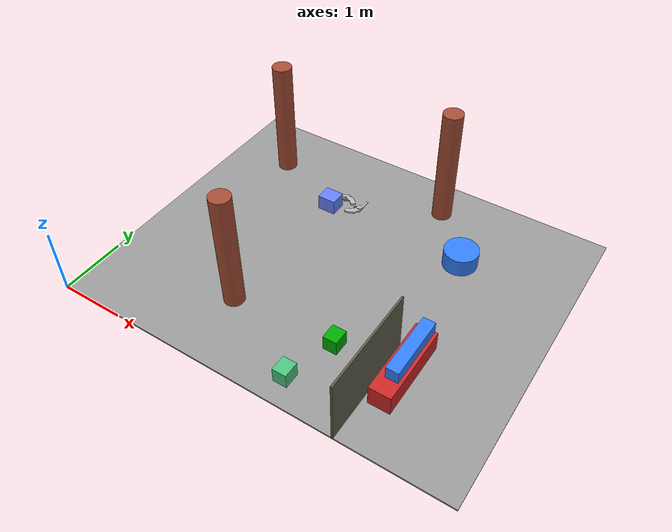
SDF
<sdf version="1.7">
 <world name="default">
  <light name="sun" type="directional">
   <pose>0 0 10 0 -0 0</pose>
   <diffuse>0.8 0.8 0.8 1</diffuse>
   <specular>0.2 0.2 0.2 1</specular>
   <attenuation>
    <range>1000</range>
    <constant>0.9</constant>
    <linear>0.01</linear>
    <quadratic>0.001</quadratic>
   </attenuation>
   <direction>-0.5 0.1 -0.9</direction>
   <spot><inner_angle>0</inner_angle><outer_angle>0</outer_angle><falloff>0</falloff></spot>
  </light>
  <gravity>0 0 -9.8</gravity>
  <magnetic_field>6e-06 2.3e-05 -4.2e-05</magnetic_field>
  <atmosphere type="adiabatic"/>
  <physics type="ode">
   <max_step_size>0.001</max_step_size>
   <real_time_factor>1</real_time_factor>
   <real_time_update_rate>1000</real_time_update_rate>
  </physics>
  <scene><ambient>0.4 0.4 0.4 1</ambient><background>0.7 0.7 0.7 1</background><shadows>1</shadows></scene>
  <spherical_coordinates>
   <surface_model>EARTH_WGS84</surface_model>
   <latitude_deg>0</latitude_deg>
   <longitude_deg>0</longitude_deg>
   <elevation>0</elevation>
   <heading_deg>0</heading_deg>
  </spherical_coordinates>
  <model name="pillar">
   <link name="link">
    <inertial>
     <mass>1</mass>
     <inertia><ixx>0.145833</ixx><ixy>0</ixy><ixz>0</ixz><iyy>0.145833</iyy><iyz>0</iyz><izz>0.125</izz></inertia>
    </inertial>
    <visual name="visual">
     <geometry><cylinder><radius>0.153505</radius><length>1.86852</length></cylinder></geometry>
     <material>
      <script><name>Gazebo/Bricks</name><uri>file://media/materials/scripts/gazebo.material</uri></script>
      <shader type="pixel"><normal_map>__default__</normal_map></shader>
      <ambient>1 1 1 1</ambient>
      <diffuse>1 1 1 1</diffuse>
      <specular>0.2 0.2 0.2 1</specular>
      <emissive>0 0 0 1</emissive>
     </material>
    </visual>
    <collision name="collision">
     <geometry><cylinder><radius>0.153505</radius><length>1.86852</length></cylinder></geometry>
     <surface>
      <friction>
       <ode><mu>1</mu><mu2>1</mu2><fdir1>0 0 0</fdir1><slip1>0</slip1><slip2>0</slip2></ode>
       <torsional>
        <coefficient>1</coefficient>
        <patch_radius>0</patch_radius>
        <surface_radius>0</surface_radius>
        <use_patch_radius>1</use_patch_radius>
        <ode><slip>0</slip></ode>
       </torsional>
      </friction>
      <bounce><restitution_coefficient>0</restitution_coefficient><threshold>1e+06</threshold></bounce>
      <contact>
       <collide_without_contact>0</collide_without_contact>
       <collide_without_contact_bitmask>1</collide_without_contact_bitmask>
       <collide_bitmask>1</collide_bitmask>
       <ode>
        <soft_cfm>0</soft_cfm>
        <soft_erp>0.2</soft_erp>
        <kp>1e+13</kp>
        <kd>1</kd>
        <max_vel>0.01</max_vel>
        <min_depth>0</min_depth>
       </ode>
       <bullet>
        <split_impulse>1</split_impulse>
        <split_impulse_penetration_threshold>-0.01</split_impulse_penetration_threshold>
        <soft_cfm>0</soft_cfm>
        <soft_erp>0.2</soft_erp>
        <kp>1e+13</kp>
        <kd>1</kd>
       </bullet>
      </contact>
     </surface>
    </collision>
   </link>
   <static>0</static>
   <pose>2.14098 1.10932 0.938603 0 -0 0</pose>
  </model>
  <model name="lab_real">
   <link name="link_1">
    <inertial>
     <mass>0.758123</mass>
     <inertia><ixx>1.52606</ixx><ixy>0</ixy><ixz>0</ixz><iyy>2.40105</iyy><iyz>0</iyz><izz>3.92704</izz></inertia>
    </inertial>
    <pose>3.0758 2.46292 0 -3.14159 0 0</pose>
    <visual name="visual">
     <geometry><box><size>6.16479 4.91475 0.024663</size></box></geometry>
     <material>
      <lighting>1</lighting>
      <script><uri>file://media/materials/scripts/gazebo.material</uri><name>Gazebo/Grey</name></script>
      <shader type="pixel"><normal_map>__default__</normal_map></shader>
      <emissive>0 0 0 1</emissive>
      <ambient>0.3 0.3 0.3 1</ambient>
      <diffuse>0.7 0.7 0.7 1</diffuse>
      <specular>0.01 0.01 0.01 1</specular>
     </material>
    </visual>
    <collision name="collision">
     <geometry><box><size>6.16479 4.91475 0.024663</size></box></geometry>
     <surface>
      <friction>
       <ode><mu>1</mu><mu2>1</mu2><fdir1>0 0 0</fdir1><slip1>0</slip1><slip2>0</slip2></ode>
       <torsional>
        <coefficient>1</coefficient>
        <patch_radius>0</patch_radius>
        <surface_radius>0</surface_radius>
        <use_patch_radius>1</use_patch_radius>
        <ode><slip>0</slip></ode>
       </torsional>
      </friction>
      <bounce><restitution_coefficient>0</restitution_coefficient><threshold>1e+06</threshold></bounce>
      <contact>
       <collide_without_contact>0</collide_without_contact>
       <collide_without_contact_bitmask>1</collide_without_contact_bitmask>
       <collide_bitmask>1</collide_bitmask>
       <ode>
        <soft_cfm>0</soft_cfm>
        <soft_erp>0.2</soft_erp>
        <kp>1e+13</kp>
        <kd>1</kd>
        <max_vel>0.01</max_vel>
        <min_depth>0</min_depth>
       </ode>
       <bullet>
        <split_impulse>1</split_impulse>
        <split_impulse_penetration_threshold>-0.01</split_impulse_penetration_threshold>
        <soft_cfm>0</soft_cfm>
        <soft_erp>0.2</soft_erp>
        <kp>1e+13</kp>
        <kd>1</kd>
       </bullet>
      </contact>
     </surface>
    </collision>
   </link>
   <link name="link_1_clone_clone">
    <inertial>
     <mass>0.0463262</mass>
     <inertia>
      <ixx>0.00964904</ixx>
      <ixy>0</ixy>
      <ixz>0</ixz>
      <iyy>0.0040622</iyy>
      <iyz>0</iyz>
      <izz>0.0137051</izz>
     </inertia>
    </inertial>
    <pose>4.50356 0.791954 0.525149 3.14159 1.57079 3.14159</pose>
    <visual name="visual">
     <geometry><box><size>1.0254 1.58071 0.02808</size></box></geometry>
     <material>
      <lighting>1</lighting>
      <script><uri>file://media/materials/scripts/gazebo.material</uri><name>Gazebo/Grey</name></script>
      <shader type="pixel"><normal_map>__default__</normal_map></shader>
      <emissive>0 0 0 1</emissive>
      <diffuse>0.367 0.367 0.3 0</diffuse>
      <ambient>0.367 0.367 0.3 1</ambient>
      <specular>0.01 0.01 0.01 1</specular>
     </material>
    </visual>
    <collision name="collision">
     <geometry><box><size>1.0254 1.58071 0.02808</size></box></geometry>
     <surface>
      <friction>
       <ode><mu>1</mu><mu2>1</mu2><fdir1>0 0 0</fdir1><slip1>0</slip1><slip2>0</slip2></ode>
       <torsional>
        <coefficient>1</coefficient>
        <patch_radius>0</patch_radius>
        <surface_radius>0</surface_radius>
        <use_patch_radius>1</use_patch_radius>
        <ode><slip>0</slip></ode>
       </torsional>
      </friction>
      <bounce><restitution_coefficient>0</restitution_coefficient><threshold>1e+06</threshold></bounce>
      <contact>
       <collide_without_contact>0</collide_without_contact>
       <collide_without_contact_bitmask>1</collide_without_contact_bitmask>
       <collide_bitmask>1</collide_bitmask>
       <ode>
        <soft_cfm>0</soft_cfm>
        <soft_erp>0.2</soft_erp>
        <kp>1e+13</kp>
        <kd>1</kd>
        <max_vel>0.01</max_vel>
        <min_depth>0</min_depth>
       </ode>
       <bullet>
        <split_impulse>1</split_impulse>
        <split_impulse_penetration_threshold>-0.01</split_impulse_penetration_threshold>
        <soft_cfm>0</soft_cfm>
        <soft_erp>0.2</soft_erp>
        <kp>1e+13</kp>
        <kd>1</kd>
       </bullet>
      </contact>
     </surface>
    </collision>
   </link>
   <link name="link_3">
    <inertial>
     <mass>0</mass>
     <inertia><ixx>0</ixx><ixy>0</ixy><ixz>0</ixz><iyy>0</iyy><iyz>0</iyz><izz>0</izz></inertia>
    </inertial>
    <pose>2.64271 2.7881 0.830284 0 -0 0</pose>
    <visual name="visual">
     <geometry><box><size>0.262033 0.226716 0.221011</size></box></geometry>
     <material>
      <lighting>1</lighting>
      <script><uri>file://media/materials/scripts/gazebo.material</uri><name>Gazebo/Grey</name></script>
      <shader type="pixel"><normal_map>__default__</normal_map></shader>
      <emissive>0 0 0 1</emissive>
      <ambient>0.4 0.5 1 1</ambient>
      <diffuse>0.4 0.5 1 1</diffuse>
      <specular>0.01 0.01 0.01 1</specular>
     </material>
    </visual>
    <collision name="collision">
     <geometry><box><size>0.262033 0.226716 0.221011</size></box></geometry>
     <surface>
      <friction>
       <ode><mu>1</mu><mu2>1</mu2><fdir1>0 0 0</fdir1><slip1>0</slip1><slip2>0</slip2></ode>
       <torsional>
        <coefficient>1</coefficient>
        <patch_radius>0</patch_radius>
        <surface_radius>0</surface_radius>
        <use_patch_radius>1</use_patch_radius>
        <ode><slip>0</slip></ode>
       </torsional>
      </friction>
      <bounce><restitution_coefficient>0</restitution_coefficient><threshold>1e+06</threshold></bounce>
      <contact>
       <collide_without_contact>0</collide_without_contact>
       <collide_without_contact_bitmask>1</collide_without_contact_bitmask>
       <collide_bitmask>1</collide_bitmask>
       <ode>
        <soft_cfm>0</soft_cfm>
        <soft_erp>0.2</soft_erp>
        <kp>1e+13</kp>
        <kd>1</kd>
        <max_vel>0.01</max_vel>
        <min_depth>0</min_depth>
       </ode>
       <bullet>
        <split_impulse>1</split_impulse>
        <split_impulse_penetration_threshold>-0.01</split_impulse_penetration_threshold>
        <soft_cfm>0</soft_cfm>
        <soft_erp>0.2</soft_erp>
        <kp>1e+13</kp>
        <kd>1</kd>
       </bullet>
      </contact>
     </surface>
    </collision>
   </link>
   <link name="link_3_clone">
    <inertial>
     <mass>0.0326408</mass>
     <inertia>
      <ixx>0.00251461</ixx>
      <ixy>0</ixy>
      <ixz>0</ixz>
      <iyy>0.000188212</iyy>
      <iyz>0</iyz>
      <izz>0.00251637</izz>
     </inertia>
    </inertial>
    <pose>4.78027 1.3623 0.432066 0 -0 0</pose>
    <visual name="visual">
     <geometry><box><size>0.186871 0.9435 0.185129</size></box></geometry>
     <material>
      <lighting>1</lighting>
      <script><uri>file://media/materials/scripts/gazebo.material</uri><name>Gazebo/Grey</name></script>
      <shader type="pixel"><normal_map>__default__</normal_map></shader>
      <emissive>0 0 0 1</emissive>
      <ambient>0.2 0.5 1 1</ambient>
      <diffuse>0.2 0.5 1 1</diffuse>
      <specular>0.01 0.01 0.01 1</specular>
     </material>
    </visual>
    <collision name="collision">
     <geometry><box><size>0.186871 0.9435 0.185129</size></box></geometry>
     <surface>
      <friction>
       <ode><mu>1</mu><mu2>1</mu2><fdir1>0 0 0</fdir1><slip1>0</slip1><slip2>0</slip2></ode>
       <torsional>
        <coefficient>1</coefficient>
        <patch_radius>0</patch_radius>
        <surface_radius>0</surface_radius>
        <use_patch_radius>1</use_patch_radius>
        <ode><slip>0</slip></ode>
       </torsional>
      </friction>
      <bounce><restitution_coefficient>0</restitution_coefficient><threshold>1e+06</threshold></bounce>
      <contact>
       <collide_without_contact>0</collide_without_contact>
       <collide_without_contact_bitmask>1</collide_without_contact_bitmask>
       <collide_bitmask>1</collide_bitmask>
       <ode>
        <soft_cfm>0</soft_cfm>
        <soft_erp>0.2</soft_erp>
        <kp>1e+13</kp>
        <kd>1</kd>
        <max_vel>0.01</max_vel>
        <min_depth>0</min_depth>
       </ode>
       <bullet>
        <split_impulse>1</split_impulse>
        <split_impulse_penetration_threshold>-0.01</split_impulse_penetration_threshold>
        <soft_cfm>0</soft_cfm>
        <soft_erp>0.2</soft_erp>
        <kp>1e+13</kp>
        <kd>1</kd>
       </bullet>
      </contact>
     </surface>
    </collision>
   </link>
   <link name="link_4">
    <inertial>
     <mass>0.0757916</mass>
     <inertia>
      <ixx>0.0017771</ixx>
      <ixy>0</ixy>
      <ixz>0</ixz>
      <iyy>0.0017771</iyy>
      <iyz>0</iyz>
      <izz>0.00256166</izz>
     </inertia>
    </inertial>
    <pose>4.46366 3.43325 0.15287 0 -0 0</pose>
    <visual name="visual">
     <geometry><cylinder><radius>0.259995</radius><length>0.280312</length></cylinder></geometry>
     <material>
      <lighting>1</lighting>
      <script><uri>file://media/materials/scripts/gazebo.material</uri><name>Gazebo/Grey</name></script>
      <shader type="pixel"><normal_map>__default__</normal_map></shader>
      <emissive>0 0 0 1</emissive>
      <ambient>0.2 0.5 1 0</ambient>
      <diffuse>0.2 0.5 1 1</diffuse>
      <specular>0.01 0.01 0.01 1</specular>
     </material>
    </visual>
    <collision name="collision">
     <geometry><cylinder><radius>0.259995</radius><length>0.280312</length></cylinder></geometry>
     <surface>
      <friction>
       <ode><mu>1</mu><mu2>1</mu2><fdir1>0 0 0</fdir1><slip1>0</slip1><slip2>0</slip2></ode>
       <torsional>
        <coefficient>1</coefficient>
        <patch_radius>0</patch_radius>
        <surface_radius>0</surface_radius>
        <use_patch_radius>1</use_patch_radius>
        <ode><slip>0</slip></ode>
       </torsional>
      </friction>
      <bounce><restitution_coefficient>0</restitution_coefficient><threshold>1e+06</threshold></bounce>
      <contact>
       <collide_without_contact>0</collide_without_contact>
       <collide_without_contact_bitmask>1</collide_without_contact_bitmask>
       <collide_bitmask>1</collide_bitmask>
       <ode>
        <soft_cfm>0</soft_cfm>
        <soft_erp>0.2</soft_erp>
        <kp>1e+13</kp>
        <kd>1</kd>
        <max_vel>0.01</max_vel>
        <min_depth>0</min_depth>
       </ode>
       <bullet>
        <split_impulse>1</split_impulse>
        <split_impulse_penetration_threshold>-0.01</split_impulse_penetration_threshold>
        <soft_cfm>0</soft_cfm>
        <soft_erp>0.2</soft_erp>
        <kp>1e+13</kp>
        <kd>1</kd>
       </bullet>
      </contact>
     </surface>
    </collision>
   </link>
   <link name="link_5">
    <inertial>
     <mass>0.123138</mass>
     <inertia>
      <ixx>0.0157175</ixx>
      <ixy>0</ixy>
      <ixz>0</ixz>
      <iyy>0.00211369</iyy>
      <iyz>0</iyz>
      <izz>0.0157573</izz>
     </inertia>
    </inertial>
    <pose>4.753 1.25194 0.170259 0 -0 0</pose>
    <visual name="visual">
     <geometry><box><size>0.323928 1.1961 0.317889</size></box></geometry>
     <material>
      <lighting>1</lighting>
      <script><uri>file://media/materials/scripts/gazebo.material</uri><name>Gazebo/Red</name></script>
      <shader type="pixel"><normal_map>__default__</normal_map></shader>
      <emissive>0 0 0 1</emissive>
      <ambient>1 0.2 0 1</ambient>
      <diffuse>1 0.2 0 1</diffuse>
      <specular>0.01 0.01 0.01 1</specular>
     </material>
    </visual>
    <collision name="collision">
     <geometry><box><size>0.323928 1.1961 0.317889</size></box></geometry>
     <surface>
      <friction>
       <ode><mu>1</mu><mu2>1</mu2><fdir1>0 0 0</fdir1><slip1>0</slip1><slip2>0</slip2></ode>
       <torsional>
        <coefficient>1</coefficient>
        <patch_radius>0</patch_radius>
        <surface_radius>0</surface_radius>
        <use_patch_radius>1</use_patch_radius>
        <ode><slip>0</slip></ode>
       </torsional>
      </friction>
      <bounce><restitution_coefficient>0</restitution_coefficient><threshold>1e+06</threshold></bounce>
      <contact>
       <collide_without_contact>0</collide_without_contact>
       <collide_without_contact_bitmask>1</collide_without_contact_bitmask>
       <collide_bitmask>1</collide_bitmask>
       <ode>
        <soft_cfm>0</soft_cfm>
        <soft_erp>0.2</soft_erp>
        <kp>1e+13</kp>
        <kd>1</kd>
        <max_vel>0.01</max_vel>
        <min_depth>0</min_depth>
       </ode>
       <bullet>
        <split_impulse>1</split_impulse>
        <split_impulse_penetration_threshold>-0.01</split_impulse_penetration_threshold>
        <soft_cfm>0</soft_cfm>
        <soft_erp>0.2</soft_erp>
        <kp>1e+13</kp>
        <kd>1</kd>
       </bullet>
      </contact>
     </surface>
    </collision>
   </link>
   <link name="link_6">
    <inertial>
     <mass>0.0122647</mass>
     <inertia>
      <ixx>0.00011764</ixx>
      <ixy>0</ixy>
      <ixz>0</ixz>
      <iyy>0.00010442</iyy>
      <iyz>0</iyz>
      <izz>0.00010648</izz>
     </inertia>
    </inertial>
    <pose>3.76938 1.17487 0.13075 0 -0 0</pose>
    <visual name="visual">
     <geometry><box><size>0.213598 0.241991 0.237785</size></box></geometry>
     <material>
      <lighting>1</lighting>
      <script><uri>file://media/materials/scripts/gazebo.material</uri><name>Gazebo/Grey</name></script>
      <shader type="pixel"><normal_map>__default__</normal_map></shader>
      <emissive>0 0 0 1</emissive>
      <ambient>0 0.667 0 0</ambient>
      <diffuse>0 0.667 0 1</diffuse>
      <specular>0.01 0.01 0.01 1</specular>
     </material>
    </visual>
    <collision name="collision">
     <geometry><box><size>0.213598 0.241991 0.237785</size></box></geometry>
     <surface>
      <friction>
       <ode><mu>1</mu><mu2>1</mu2><fdir1>0 0 0</fdir1><slip1>0</slip1><slip2>0</slip2></ode>
       <torsional>
        <coefficient>1</coefficient>
        <patch_radius>0</patch_radius>
        <surface_radius>0</surface_radius>
        <use_patch_radius>1</use_patch_radius>
        <ode><slip>0</slip></ode>
       </torsional>
      </friction>
      <bounce><restitution_coefficient>0</restitution_coefficient><threshold>1e+06</threshold></bounce>
      <contact>
       <collide_without_contact>0</collide_without_contact>
       <collide_without_contact_bitmask>1</collide_without_contact_bitmask>
       <collide_bitmask>1</collide_bitmask>
       <ode>
        <soft_cfm>0</soft_cfm>
        <soft_erp>0.2</soft_erp>
        <kp>1e+13</kp>
        <kd>1</kd>
        <max_vel>0.01</max_vel>
        <min_depth>0</min_depth>
       </ode>
       <bullet>
        <split_impulse>1</split_impulse>
        <split_impulse_penetration_threshold>-0.01</split_impulse_penetration_threshold>
        <soft_cfm>0</soft_cfm>
        <soft_erp>0.2</soft_erp>
        <kp>1e+13</kp>
        <kd>1</kd>
       </bullet>
      </contact>
     </surface>
    </collision>
   </link>
   <link name="link_6_clone">
    <inertial>
     <mass>0.0122647</mass>
     <inertia>
      <ixx>0.00011764</ixx>
      <ixy>0</ixy>
      <ixz>0</ixz>
      <iyy>0.00010442</iyy>
      <iyz>0</iyz>
      <izz>0.00010648</izz>
     </inertia>
    </inertial>
    <pose>3.52606 0.408481 0.130799 0 -0 0</pose>
    <visual name="visual">
     <geometry><box><size>0.213598 0.241991 0.237785</size></box></geometry>
     <material>
      <lighting>1</lighting>
      <script><uri>file://media/materials/scripts/gazebo.material</uri><name>Gazebo/Grey</name></script>
      <shader type="pixel"><normal_map>__default__</normal_map></shader>
      <emissive>0 0 0 1</emissive>
      <ambient>0.4 0.767 0.498 0</ambient>
      <diffuse>0.3 0.767 0.498 1</diffuse>
      <specular>0.01 0.01 0.01 1</specular>
     </material>
    </visual>
    <collision name="collision">
     <geometry><box><size>0.213598 0.241991 0.237785</size></box></geometry>
     <surface>
      <friction>
       <ode><mu>1</mu><mu2>1</mu2><fdir1>0 0 0</fdir1><slip1>0</slip1><slip2>0</slip2></ode>
       <torsional>
        <coefficient>1</coefficient>
        <patch_radius>0</patch_radius>
        <surface_radius>0</surface_radius>
        <use_patch_radius>1</use_patch_radius>
        <ode><slip>0</slip></ode>
       </torsional>
      </friction>
      <bounce><restitution_coefficient>0</restitution_coefficient><threshold>1e+06</threshold></bounce>
      <contact>
       <collide_without_contact>0</collide_without_contact>
       <collide_without_contact_bitmask>1</collide_without_contact_bitmask>
       <collide_bitmask>1</collide_bitmask>
       <ode>
        <soft_cfm>0</soft_cfm>
        <soft_erp>0.2</soft_erp>
        <kp>1e+13</kp>
        <kd>1</kd>
        <max_vel>0.01</max_vel>
        <min_depth>0</min_depth>
       </ode>
       <bullet>
        <split_impulse>1</split_impulse>
        <split_impulse_penetration_threshold>-0.01</split_impulse_penetration_threshold>
        <soft_cfm>0</soft_cfm>
        <soft_erp>0.2</soft_erp>
        <kp>1e+13</kp>
        <kd>1</kd>
       </bullet>
      </contact>
     </surface>
    </collision>
   </link>
   <joint name="link_1_JOINT_10" type="fixed">
    <parent>link_1</parent>
    <child>link_3</child>
    <physics>
     <ode><limit><cfm>0</cfm><erp>0.2</erp></limit><suspension><cfm>0</cfm><erp>0.2</erp></suspension></ode>
    </physics>
   </joint>
   <joint name="link_1_JOINT_4" type="fixed">
    <parent>link_1</parent>
    <child>link_1_clone_clone</child>
    <physics>
     <ode><limit><cfm>0</cfm><erp>0.2</erp></limit><suspension><cfm>0</cfm><erp>0.2</erp></suspension></ode>
    </physics>
   </joint>
   <joint name="link_1_JOINT_5" type="fixed">
    <parent>link_1</parent>
    <child>link_3_clone</child>
    <physics>
     <ode><limit><cfm>0</cfm><erp>0.2</erp></limit><suspension><cfm>0</cfm><erp>0.2</erp></suspension></ode>
    </physics>
   </joint>
   <joint name="link_1_JOINT_6" type="fixed">
    <parent>link_1</parent>
    <child>link_4</child>
    <physics>
     <ode><limit><cfm>0</cfm><erp>0.2</erp></limit><suspension><cfm>0</cfm><erp>0.2</erp></suspension></ode>
    </physics>
   </joint>
   <joint name="link_1_JOINT_7" type="fixed">
    <parent>link_1</parent>
    <child>link_6</child>
    <physics>
     <ode><limit><cfm>0</cfm><erp>0.2</erp></limit><suspension><cfm>0</cfm><erp>0.2</erp></suspension></ode>
    </physics>
   </joint>
   <joint name="link_1_JOINT_8" type="fixed">
    <parent>link_1</parent>
    <child>link_6_clone</child>
    <physics>
     <ode><limit><cfm>0</cfm><erp>0.2</erp></limit><suspension><cfm>0</cfm><erp>0.2</erp></suspension></ode>
    </physics>
   </joint>
   <joint name="link_1_JOINT_9" type="fixed">
    <parent>link_1</parent>
    <child>link_5</child>
    <physics>
     <ode><limit><cfm>0</cfm><erp>0.2</erp></limit><suspension><cfm>0</cfm><erp>0.2</erp></suspension></ode>
    </physics>
   </joint>
   <static>1</static>
  </model>
  <model name="pillar_clone">
   <link name="link">
    <inertial>
     <mass>1</mass>
     <inertia><ixx>0.145833</ixx><ixy>0</ixy><ixz>0</ixz><iyy>0.145833</iyy><iyz>0</iyz><izz>0.125</izz></inertia>
    </inertial>
    <visual name="visual">
     <geometry><cylinder><radius>0.153505</radius><length>1.86852</length></cylinder></geometry>
     <material>
      <script><name>Gazebo/Bricks</name><uri>file://media/materials/scripts/gazebo.material</uri></script>
      <shader type="pixel"><normal_map>__default__</normal_map></shader>
      <ambient>1 1 1 1</ambient>
      <diffuse>1 1 1 1</diffuse>
      <specular>0.2 0.2 0.2 1</specular>
      <emissive>0 0 0 1</emissive>
     </material>
    </visual>
    <collision name="collision">
     <geometry><cylinder><radius>0.153505</radius><length>1.86852</length></cylinder></geometry>
     <surface>
      <friction>
       <ode><mu>1</mu><mu2>1</mu2><fdir1>0 0 0</fdir1><slip1>0</slip1><slip2>0</slip2></ode>
       <torsional>
        <coefficient>1</coefficient>
        <patch_radius>0</patch_radius>
        <surface_radius>0</surface_radius>
        <use_patch_radius>1</use_patch_radius>
        <ode><slip>0</slip></ode>
       </torsional>
      </friction>
      <bounce><restitution_coefficient>0</restitution_coefficient><threshold>1e+06</threshold></bounce>
      <contact>
       <collide_without_contact>0</collide_without_contact>
       <collide_without_contact_bitmask>1</collide_without_contact_bitmask>
       <collide_bitmask>1</collide_bitmask>
       <ode>
        <soft_cfm>0</soft_cfm>
        <soft_erp>0.2</soft_erp>
        <kp>1e+13</kp>
        <kd>1</kd>
        <max_vel>0.01</max_vel>
        <min_depth>0</min_depth>
       </ode>
       <bullet>
        <split_impulse>1</split_impulse>
        <split_impulse_penetration_threshold>-0.01</split_impulse_penetration_threshold>
        <soft_cfm>0</soft_cfm>
        <soft_erp>0.2</soft_erp>
        <kp>1e+13</kp>
        <kd>1</kd>
       </bullet>
      </contact>
     </surface>
    </collision>
   </link>
   <static>0</static>
   <pose>0.97976 3.97671 0.938603 0 -0 0</pose>
  </model>
  <model name="pillar_clone_0">
   <link name="link">
    <inertial>
     <mass>1</mass>
     <inertia><ixx>0.145833</ixx><ixy>0</ixy><ixz>0</ixz><iyy>0.145833</iyy><iyz>0</iyz><izz>0.125</izz></inertia>
    </inertial>
    <visual name="visual">
     <geometry><cylinder><radius>0.153505</radius><length>1.86852</length></cylinder></geometry>
     <material>
      <script><name>Gazebo/Bricks</name><uri>file://media/materials/scripts/gazebo.material</uri></script>
      <shader type="pixel"><normal_map>__default__</normal_map></shader>
      <ambient>1 1 1 1</ambient>
      <diffuse>1 1 1 1</diffuse>
      <specular>0.2 0.2 0.2 1</specular>
      <emissive>0 0 0 1</emissive>
     </material>
    </visual>
    <collision name="collision">
     <geometry><cylinder><radius>0.153505</radius><length>1.86852</length></cylinder></geometry>
     <surface>
      <friction>
       <ode><mu>1</mu><mu2>1</mu2><fdir1>0 0 0</fdir1><slip1>0</slip1><slip2>0</slip2></ode>
       <torsional>
        <coefficient>1</coefficient>
        <patch_radius>0</patch_radius>
        <surface_radius>0</surface_radius>
        <use_patch_radius>1</use_patch_radius>
        <ode><slip>0</slip></ode>
       </torsional>
      </friction>
      <bounce><restitution_coefficient>0</restitution_coefficient><threshold>1e+06</threshold></bounce>
      <contact>
       <collide_without_contact>0</collide_without_contact>
       <collide_without_contact_bitmask>1</collide_without_contact_bitmask>
       <collide_bitmask>1</collide_bitmask>
       <ode>
        <soft_cfm>0</soft_cfm>
        <soft_erp>0.2</soft_erp>
        <kp>1e+13</kp>
        <kd>1</kd>
        <max_vel>0.01</max_vel>
        <min_depth>0</min_depth>
       </ode>
       <bullet>
        <split_impulse>1</split_impulse>
        <split_impulse_penetration_threshold>-0.01</split_impulse_penetration_threshold>
        <soft_cfm>0</soft_cfm>
        <soft_erp>0.2</soft_erp>
        <kp>1e+13</kp>
        <kd>1</kd>
       </bullet>
      </contact>
     </surface>
    </collision>
   </link>
   <static>0</static>
   <pose>3.73548 4.26332 0.938603 0 -0 0</pose>
  </model>
  <model name="gun">
   <link name="link">
    <inertial>
     <pose>0 -0.1 0.95 0 -0 0</pose>
     <mass>80</mass>
     <inertia><ixx>24.88</ixx><ixy>0</ixy><ixz>0</ixz><iyy>25.73</iyy><iyz>0</iyz><izz>2.48</izz></inertia>
    </inertial>
    <visual name="visual">
     <geometry>
      <mesh><uri>model://gun/Gun.dae</uri><scale>0.5 0.5 0.5</scale></mesh>
      <pose>0 0 0.02 0.04 -0 0</pose>
     </geometry>
    </visual>
    <collision name="drugs"><geometry><box><size>0.2 0.2 0.2</size></box></geometry></collision>
   </link>
   <static>0</static>
   <pose>2.99779 2.91677 0.745581 -1.5708 -0 -1.5708</pose>
  </model>
  <model name="gun_clone">
   <link name="link">
    <inertial>
     <pose>0 -0.1 0.95 0 -0 0</pose>
     <mass>80</mass>
     <inertia><ixx>24.88</ixx><ixy>0</ixy><ixz>0</ixz><iyy>25.73</iyy><iyz>0</iyz><izz>2.48</izz></inertia>
    </inertial>
    <visual name="visual">
     <geometry>
      <mesh><uri>model://gun/Gun.dae</uri><scale>0.5 0.5 0.5</scale></mesh>
      <pose>0 0 0.02 0.04 -0 0</pose>
     </geometry>
    </visual>
    <collision name="drugs"><geometry><box><size>0.2 0.2 0.2</size></box></geometry></collision>
   </link>
   <static>0</static>
   <pose>2.75837 3.04143 0.745581 -1.57079 3e-06 0.50094</pose>
  </model>
 </world>
</sdf>
